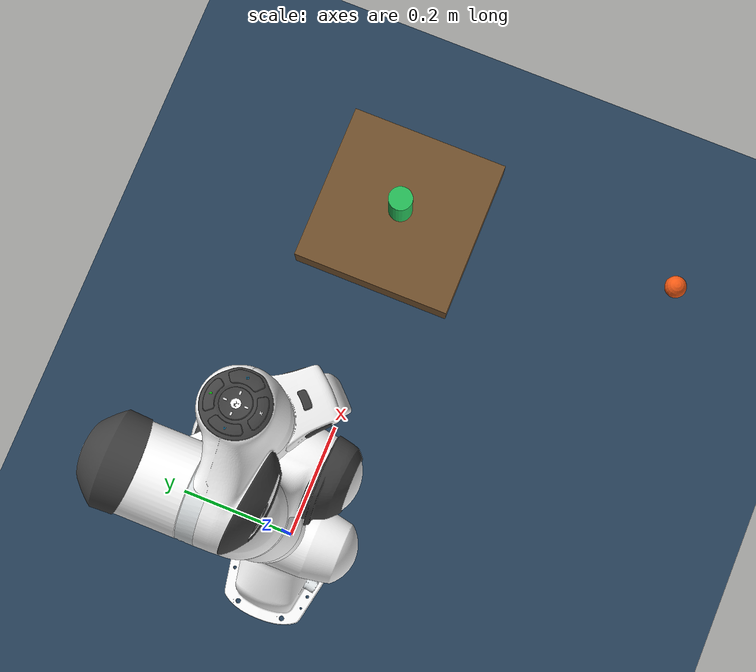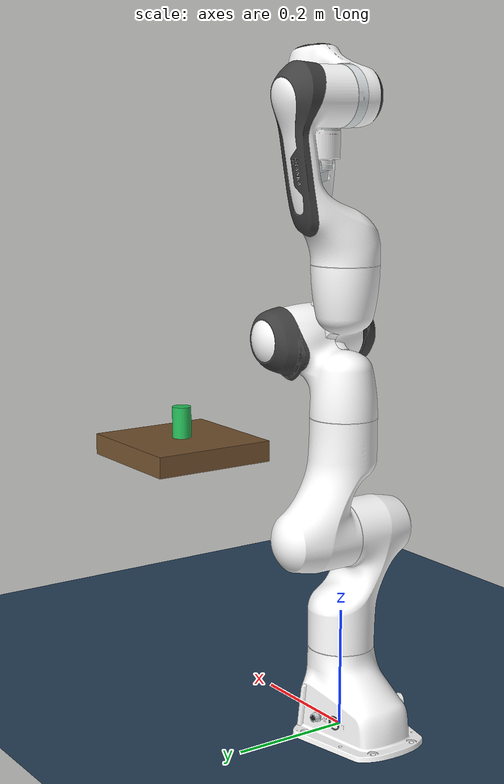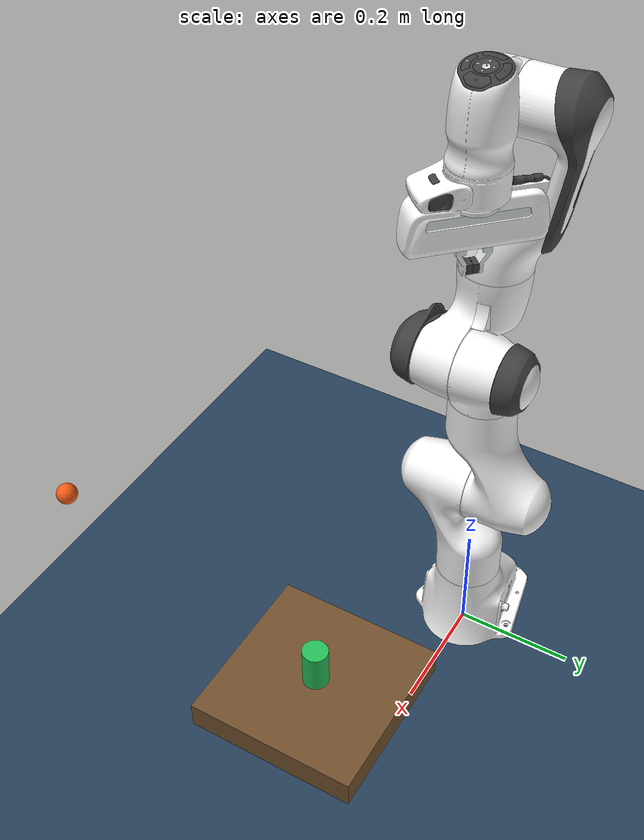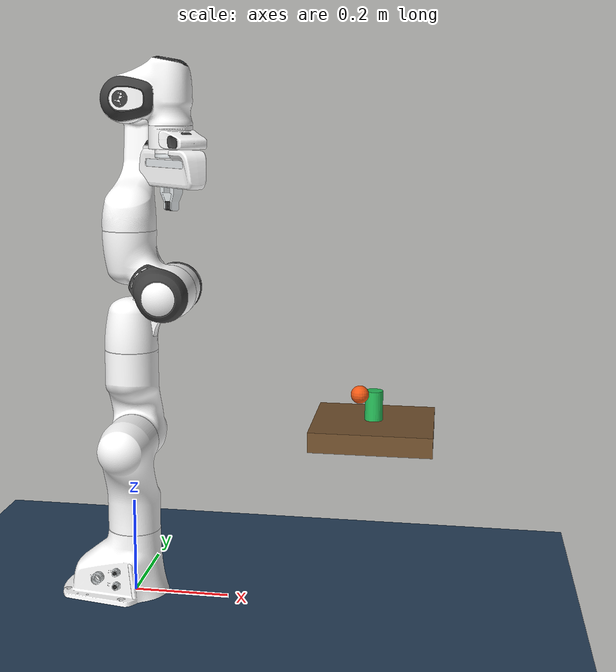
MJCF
<mujoco model="panda ballistic impact diagnostic noslip1">
  <include file="panda_torque.xml"/>

  <visual>
    <headlight diffuse="0.6 0.6 0.6" ambient="0.3 0.3 0.3" specular="0 0 0"/>
    <rgba haze="0.15 0.25 0.35 1"/>
    <global azimuth="120" elevation="-20"/>
  </visual>

  <asset>
    <texture type="skybox" builtin="gradient" rgb1="0.3 0.5 0.7" rgb2="0 0 0" width="512" height="3072"/>
    <texture type="2d" name="groundplane" builtin="checker" mark="edge" rgb1="0.2 0.3 0.4" rgb2="0.1 0.2 0.3"
      markrgb="0.8 0.8 0.8" width="300" height="300"/>
    <material name="groundplane" texture="groundplane" texuniform="true" texrepeat="5 5" reflectance="0.2"/>
  </asset>

  <worldbody>
    <light pos="0 0 1.5" dir="0 0 -1" directional="true"/>
    <geom name="floor" size="0 0 0.05" type="plane" material="groundplane"/>
    <geom name="table" type="box" size="0.12 0.12 0.02" pos="0.5 0.0 0.38"
      friction="1.0 0.005 0.0001" rgba="0.45 0.32 0.18 1"/>
    <body name="object" pos="0.5 0.0 0.43">
      <freejoint name="object_joint"/>
      <inertial mass="0.2" pos="0 0 0" diaginertia="7.62000000e-05 7.62000000e-05 3.24000000e-05"/>
      <geom name="object" type="cylinder" size="0.018 0.03" condim="4"
        friction="1.0 0.005 0.0001" rgba="0.15 0.75 0.35 1" solref="0.01 1"
        contype="3" conaffinity="3"/>
    </body>
    <body name="impact_ball" pos="0.50 -0.40 0.55">
      <freejoint name="ball_joint"/>
      <inertial mass="0.05" pos="0 0 0" diaginertia="4.50000000e-06 4.50000000e-06 4.50000000e-06"/>
      <geom name="impact_ball" type="sphere" size="0.015" condim="3"
        friction="0.40 0.005 0.0001" rgba="0.95 0.35 0.08 1" solref="0.004 1"
        contype="2" conaffinity="2"/>
    </body>
    <body name="ball_guide" mocap="true" pos="0.50 -0.40 0.55">
      <geom name="ball_guide_geom" type="sphere" size="0.010" contype="0" conaffinity="0"
        group="3" rgba="0.15 0.40 0.95 0.08"/>
    </body>
  </worldbody>

  <equality>
    <weld name="ball_guide_weld" body1="impact_ball" body2="ball_guide"
      solimp="0.99 0.999 0.0001" solref="0.004 1"/>
  </equality>

  <keyframe>
    <key name="home"
      qpos="0 0 0 -1.57079 0 1.57079 -0.7853 0.04 0.04  0.5 0 0.43  1 0 0 0  0.50 -0.40 0.55  1 0 0 0"
      ctrl="0 0 0 0 0 0 0 0"/>
  </keyframe>
</mujoco>

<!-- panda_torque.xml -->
<mujoco model="panda">
  <compiler angle="radian" meshdir="../mujoco_menagerie/franka_emika_panda/assets" autolimits="true"/>

  <option integrator="implicitfast" timestep="0.002" gravity="0 0 -9.81" noslip_iterations="1" noslip_tolerance="1e-6"/>

  <default>
    <default class="panda">
      <material specular="0.5" shininess="0.25"/>
      <joint armature="0.1" damping="1" axis="0 0 1" range="-2.8973 2.8973"/>
      <general dyntype="none" biastype="affine" ctrlrange="-2.8973 2.8973" forcerange="-87 87"/>
      <default class="finger">
        <joint axis="0 1 0" type="slide" range="0 0.04"/>
      </default>

      <default class="visual">
        <geom type="mesh" contype="0" conaffinity="0" group="2"/>
      </default>
      <default class="collision">
        <geom type="mesh" group="3"/>
        <default class="fingertip_pad_collision_1">
          <geom type="box" size="0.0085 0.004 0.0085" pos="0 0.0055 0.0445"/>
        </default>
        <default class="fingertip_pad_collision_2">
          <geom type="box" size="0.003 0.002 0.003" pos="0.0055 0.002 0.05"/>
        </default>
        <default class="fingertip_pad_collision_3">
          <geom type="box" size="0.003 0.002 0.003" pos="-0.0055 0.002 0.05"/>
        </default>
        <default class="fingertip_pad_collision_4">
          <geom type="box" size="0.003 0.002 0.0035" pos="0.0055 0.002 0.0395"/>
        </default>
        <default class="fingertip_pad_collision_5">
          <geom type="box" size="0.003 0.002 0.0035" pos="-0.0055 0.002 0.0395"/>
        </default>
      </default>
    </default>
  </default>

  <asset>
    <material class="panda" name="white" rgba="1 1 1 1"/>
    <material class="panda" name="off_white" rgba="0.901961 0.921569 0.929412 1"/>
    <material class="panda" name="black" rgba="0.25 0.25 0.25 1"/>
    <material class="panda" name="green" rgba="0 1 0 1"/>
    <material class="panda" name="light_blue" rgba="0.039216 0.541176 0.780392 1"/>

    <!-- Collision meshes -->
    <mesh name="link0_c" file="link0.stl"/>
    <mesh name="link1_c" file="link1.stl"/>
    <mesh name="link2_c" file="link2.stl"/>
    <mesh name="link3_c" file="link3.stl"/>
    <mesh name="link4_c" file="link4.stl"/>
    <mesh name="link5_c0" file="link5_collision_0.obj"/>
    <mesh name="link5_c1" file="link5_collision_1.obj"/>
    <mesh name="link5_c2" file="link5_collision_2.obj"/>
    <mesh name="link6_c" file="link6.stl"/>
    <mesh name="link7_c" file="link7.stl"/>
    <mesh name="hand_c" file="hand.stl"/>

    <!-- Visual meshes -->
    <mesh file="link0_0.obj"/>
    <mesh file="link0_1.obj"/>
    <mesh file="link0_2.obj"/>
    <mesh file="link0_3.obj"/>
    <mesh file="link0_4.obj"/>
    <mesh file="link0_5.obj"/>
    <mesh file="link0_7.obj"/>
    <mesh file="link0_8.obj"/>
    <mesh file="link0_9.obj"/>
    <mesh file="link0_10.obj"/>
    <mesh file="link0_11.obj"/>
    <mesh file="link1.obj"/>
    <mesh file="link2.obj"/>
    <mesh file="link3_0.obj"/>
    <mesh file="link3_1.obj"/>
    <mesh file="link3_2.obj"/>
    <mesh file="link3_3.obj"/>
    <mesh file="link4_0.obj"/>
    <mesh file="link4_1.obj"/>
    <mesh file="link4_2.obj"/>
    <mesh file="link4_3.obj"/>
    <mesh file="link5_0.obj"/>
    <mesh file="link5_1.obj"/>
    <mesh file="link5_2.obj"/>
    <mesh file="link6_0.obj"/>
    <mesh file="link6_1.obj"/>
    <mesh file="link6_2.obj"/>
    <mesh file="link6_3.obj"/>
    <mesh file="link6_4.obj"/>
    <mesh file="link6_5.obj"/>
    <mesh file="link6_6.obj"/>
    <mesh file="link6_7.obj"/>
    <mesh file="link6_8.obj"/>
    <mesh file="link6_9.obj"/>
    <mesh file="link6_10.obj"/>
    <mesh file="link6_11.obj"/>
    <mesh file="link6_12.obj"/>
    <mesh file="link6_13.obj"/>
    <mesh file="link6_14.obj"/>
    <mesh file="link6_15.obj"/>
    <mesh file="link6_16.obj"/>
    <mesh file="link7_0.obj"/>
    <mesh file="link7_1.obj"/>
    <mesh file="link7_2.obj"/>
    <mesh file="link7_3.obj"/>
    <mesh file="link7_4.obj"/>
    <mesh file="link7_5.obj"/>
    <mesh file="link7_6.obj"/>
    <mesh file="link7_7.obj"/>
    <mesh file="hand_0.obj"/>
    <mesh file="hand_1.obj"/>
    <mesh file="hand_2.obj"/>
    <mesh file="hand_3.obj"/>
    <mesh file="hand_4.obj"/>
    <mesh file="finger_0.obj"/>
    <mesh file="finger_1.obj"/>
  </asset>

  <worldbody>
    <light name="top" pos="0 0 2" mode="trackcom"/>
    <body name="link0" childclass="panda">
      <inertial mass="0.629769" pos="-0.041018 -0.00014 0.049974"
        fullinertia="0.00315 0.00388 0.004285 8.2904e-7 0.00015 8.2299e-6"/>
      <geom mesh="link0_0" material="off_white" class="visual"/>
      <geom mesh="link0_1" material="black" class="visual"/>
      <geom mesh="link0_2" material="off_white" class="visual"/>
      <geom mesh="link0_3" material="black" class="visual"/>
      <geom mesh="link0_4" material="off_white" class="visual"/>
      <geom mesh="link0_5" material="black" class="visual"/>
      <geom mesh="link0_7" material="white" class="visual"/>
      <geom mesh="link0_8" material="white" class="visual"/>
      <geom mesh="link0_9" material="black" class="visual"/>
      <geom mesh="link0_10" material="off_white" class="visual"/>
      <geom mesh="link0_11" material="white" class="visual"/>
      <geom mesh="link0_c" class="collision"/>
      <body name="link1" pos="0 0 0.333">
        <inertial mass="4.970684" pos="0.003875 0.002081 -0.04762"
          fullinertia="0.70337 0.70661 0.0091170 -0.00013900 0.0067720 0.019169"/>
        <joint name="joint1"/>
        <geom material="white" mesh="link1" class="visual"/>
        <geom mesh="link1_c" class="collision"/>
        <body name="link2" quat="1 -1 0 0">
          <inertial mass="0.646926" pos="-0.003141 -0.02872 0.003495"
            fullinertia="0.0079620 2.8110e-2 2.5995e-2 -3.925e-3 1.0254e-2 7.04e-4"/>
          <joint name="joint2" range="-1.7628 1.7628"/>
          <geom material="white" mesh="link2" class="visual"/>
          <geom mesh="link2_c" class="collision"/>
          <body name="link3" pos="0 -0.316 0" quat="1 1 0 0">
            <joint name="joint3"/>
            <inertial mass="3.228604" pos="2.7518e-2 3.9252e-2 -6.6502e-2"
              fullinertia="3.7242e-2 3.6155e-2 1.083e-2 -4.761e-3 -1.1396e-2 -1.2805e-2"/>
            <geom mesh="link3_0" material="white" class="visual"/>
            <geom mesh="link3_1" material="white" class="visual"/>
            <geom mesh="link3_2" material="white" class="visual"/>
            <geom mesh="link3_3" material="black" class="visual"/>
            <geom mesh="link3_c" class="collision"/>
            <body name="link4" pos="0.0825 0 0" quat="1 1 0 0">
              <inertial mass="3.587895" pos="-5.317e-2 1.04419e-1 2.7454e-2"
                fullinertia="2.5853e-2 1.9552e-2 2.8323e-2 7.796e-3 -1.332e-3 8.641e-3"/>
              <joint name="joint4" range="-3.0718 -0.0698"/>
              <geom mesh="link4_0" material="white" class="visual"/>
              <geom mesh="link4_1" material="white" class="visual"/>
              <geom mesh="link4_2" material="black" class="visual"/>
              <geom mesh="link4_3" material="white" class="visual"/>
              <geom mesh="link4_c" class="collision"/>
              <body name="link5" pos="-0.0825 0.384 0" quat="1 -1 0 0">
                <inertial mass="1.225946" pos="-1.1953e-2 4.1065e-2 -3.8437e-2"
                  fullinertia="3.5549e-2 2.9474e-2 8.627e-3 -2.117e-3 -4.037e-3 2.29e-4"/>
                <joint name="joint5"/>
                <geom mesh="link5_0" material="black" class="visual"/>
                <geom mesh="link5_1" material="white" class="visual"/>
                <geom mesh="link5_2" material="white" class="visual"/>
                <geom mesh="link5_c0" class="collision"/>
                <geom mesh="link5_c1" class="collision"/>
                <geom mesh="link5_c2" class="collision"/>
                <body name="link6" quat="1 1 0 0">
                  <inertial mass="1.666555" pos="6.0149e-2 -1.4117e-2 -1.0517e-2"
                    fullinertia="1.964e-3 4.354e-3 5.433e-3 1.09e-4 -1.158e-3 3.41e-4"/>
                  <joint name="joint6" range="-0.0175 3.7525"/>
                  <geom mesh="link6_0" material="off_white" class="visual"/>
                  <geom mesh="link6_1" material="white" class="visual"/>
                  <geom mesh="link6_2" material="black" class="visual"/>
                  <geom mesh="link6_3" material="white" class="visual"/>
                  <geom mesh="link6_4" material="white" class="visual"/>
                  <geom mesh="link6_5" material="white" class="visual"/>
                  <geom mesh="link6_6" material="white" class="visual"/>
                  <geom mesh="link6_7" material="light_blue" class="visual"/>
                  <geom mesh="link6_8" material="light_blue" class="visual"/>
                  <geom mesh="link6_9" material="black" class="visual"/>
                  <geom mesh="link6_10" material="black" class="visual"/>
                  <geom mesh="link6_11" material="white" class="visual"/>
                  <geom mesh="link6_12" material="green" class="visual"/>
                  <geom mesh="link6_13" material="white" class="visual"/>
                  <geom mesh="link6_14" material="black" class="visual"/>
                  <geom mesh="link6_15" material="black" class="visual"/>
                  <geom mesh="link6_16" material="white" class="visual"/>
                  <geom mesh="link6_c" class="collision"/>
                  <body name="link7" pos="0.088 0 0" quat="1 1 0 0">
                    <inertial mass="7.35522e-01" pos="1.0517e-2 -4.252e-3 6.1597e-2"
                      fullinertia="1.2516e-2 1.0027e-2 4.815e-3 -4.28e-4 -1.196e-3 -7.41e-4"/>
                    <joint name="joint7"/>
                    <geom mesh="link7_0" material="white" class="visual"/>
                    <geom mesh="link7_1" material="black" class="visual"/>
                    <geom mesh="link7_2" material="black" class="visual"/>
                    <geom mesh="link7_3" material="black" class="visual"/>
                    <geom mesh="link7_4" material="black" class="visual"/>
                    <geom mesh="link7_5" material="black" class="visual"/>
                    <geom mesh="link7_6" material="black" class="visual"/>
                    <geom mesh="link7_7" material="white" class="visual"/>
                    <geom mesh="link7_c" class="collision"/>
                    <body name="hand" pos="0 0 0.107" quat="0.9238795 0 0 -0.3826834">
                      <inertial mass="0.73" pos="-0.01 0 0.03" diaginertia="0.001 0.0025 0.0017"/>
                      <geom mesh="hand_0" material="off_white" class="visual"/>
                      <geom mesh="hand_1" material="black" class="visual"/>
                      <geom mesh="hand_2" material="black" class="visual"/>
                      <geom mesh="hand_3" material="white" class="visual"/>
                      <geom mesh="hand_4" material="off_white" class="visual"/>
                      <geom mesh="hand_c" class="collision"/>
                      <body name="left_finger" pos="0 0 0.0584">
                        <site name="touch_left" pos="0 0.006 0.045" size="0.01" group="4" rgba="1 0 0 0.35"/>
                        <inertial mass="0.015" pos="0 0 0" diaginertia="2.375e-6 2.375e-6 7.5e-7"/>
                        <joint name="finger_joint1" class="finger"/>
                        <geom mesh="finger_0" material="off_white" class="visual"/>
                        <geom mesh="finger_1" material="black" class="visual"/>
                        <geom mesh="finger_0" class="collision"/>
                        <geom class="fingertip_pad_collision_1"/>
                        <geom class="fingertip_pad_collision_2"/>
                        <geom class="fingertip_pad_collision_3"/>
                        <geom class="fingertip_pad_collision_4"/>
                        <geom class="fingertip_pad_collision_5"/>
                      </body>
                      <body name="right_finger" pos="0 0 0.0584" quat="0 0 0 1">
                        <site name="touch_right" pos="0 0.006 0.045" size="0.01" group="4" rgba="1 0 0 0.35"/>
                        <inertial mass="0.015" pos="0 0 0" diaginertia="2.375e-6 2.375e-6 7.5e-7"/>
                        <joint name="finger_joint2" class="finger"/>
                        <geom mesh="finger_0" material="off_white" class="visual"/>
                        <geom mesh="finger_1" material="black" class="visual"/>
                        <geom mesh="finger_0" class="collision"/>
                        <geom class="fingertip_pad_collision_1"/>
                        <geom class="fingertip_pad_collision_2"/>
                        <geom class="fingertip_pad_collision_3"/>
                        <geom class="fingertip_pad_collision_4"/>
                        <geom class="fingertip_pad_collision_5"/>
                      </body>
                    </body>
                  </body>
                </body>
              </body>
            </body>
          </body>
        </body>
      </body>
    </body>
  </worldbody>

  <tendon>
    <fixed name="split">
      <joint joint="finger_joint1" coef="0.5"/>
      <joint joint="finger_joint2" coef="0.5"/>
    </fixed>
  </tendon>

  <equality>
    <joint joint1="finger_joint1" joint2="finger_joint2" solimp="0.95 0.99 0.001" solref="0.005 1"/>
  </equality>

  <actuator>
    <motor name="actuator1" joint="joint1" gear="1" ctrlrange="-87 87" forcerange="-87 87"/>
    <motor name="actuator2" joint="joint2" gear="1" ctrlrange="-87 87" forcerange="-87 87"/>
    <motor name="actuator3" joint="joint3" gear="1" ctrlrange="-87 87" forcerange="-87 87"/>
    <motor name="actuator4" joint="joint4" gear="1" ctrlrange="-87 87" forcerange="-87 87"/>
    <motor name="actuator5" joint="joint5" gear="1" ctrlrange="-12 12" forcerange="-12 12"/>
    <motor name="actuator6" joint="joint6" gear="1" ctrlrange="-12 12" forcerange="-12 12"/>
    <motor name="actuator7" joint="joint7" gear="1" ctrlrange="-12 12" forcerange="-12 12"/>
    <motor name="actuator8" tendon="split" gear="1" ctrlrange="-50 50" forcerange="-50 50"/>
  </actuator>

  <sensor>
    <touch name="touch_left" site="touch_left"/>
    <touch name="touch_right" site="touch_right"/>
  </sensor>

  <contact>
    <exclude body1="link0" body2="link1"/>
  </contact>
</mujoco>
